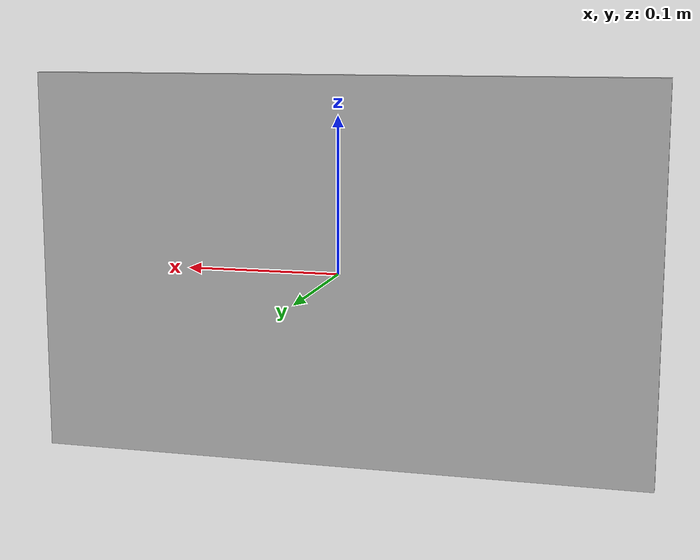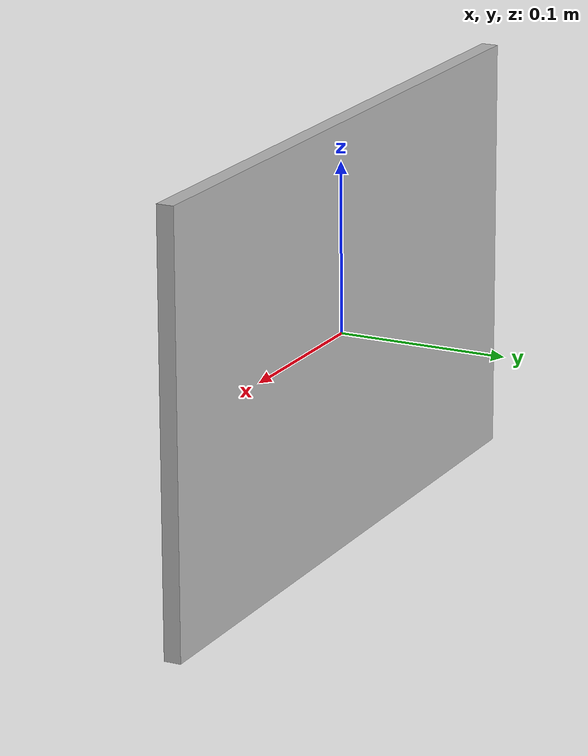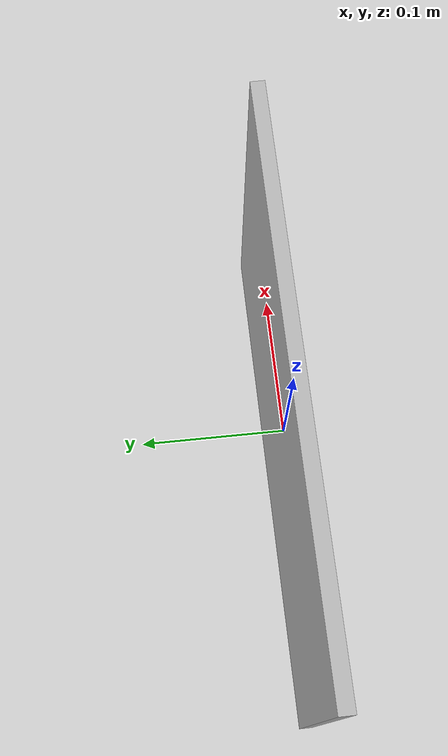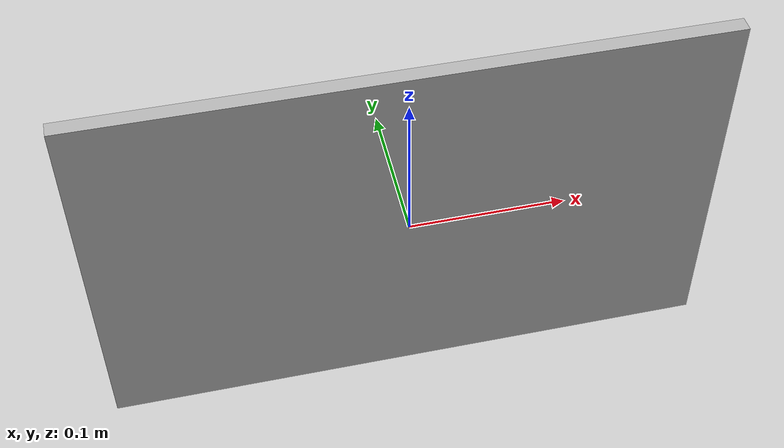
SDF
<?xml version='1.0'?>
<sdf version="1.4">
  <model name="chessboard">
    <pose>0 0 0. 0 0 0</pose>
    <static>True</static>
    <link name="link">
      <inertial>
        <mass>1.0</mass>
        <inertia> <!-- inertias are tricky to compute -->
          <!-- http://gazebosim.org/tutorials?tut=inertia&cat=build_robot -->
          <ixx>0.083</ixx>       <!-- for a box: ixx = 0.083 * mass * (y*y + z*z) -->
          <ixy>0.0</ixy>         <!-- for a box: ixy = 0 -->
          <ixz>0.0</ixz>         <!-- for a box: ixz = 0 -->
          <iyy>0.083</iyy>       <!-- for a box: iyy = 0.083 * mass * (x*x + z*z) -->
          <iyz>0.0</iyz>         <!-- for a box: iyz = 0 -->
          <izz>0.083</izz>       <!-- for a box: izz = 0.083 * mass * (x*x + y*y) -->
        </inertia>
      </inertial>
      <collision name="bottom">
	<pose>0 0 0.01 0 0 0</pose>
	<geometry>
	  <box>
	    <size>0.5 0.1 0.3</size>
	  </box>
	</geometry>
      </collision>

      <collision name="collision">
        <geometry>
          <box>
            <size>0.4 0.01 0.25</size>
          </box>
        </geometry>
      </collision>
      <visual name="visual">
        <geometry>
          <box>
            <size>0.4 0.01 0.25</size>
          </box>
        </geometry>
	<material>
            <texture filename="objects/materials/textures/chessboard.png"/>

        </material>
      </visual>
    </link>
  </model>
</sdf>
